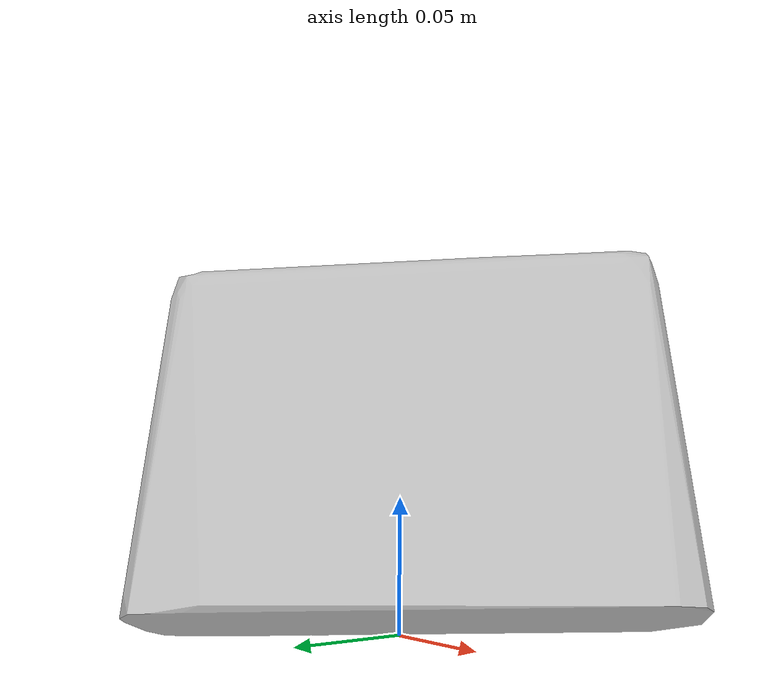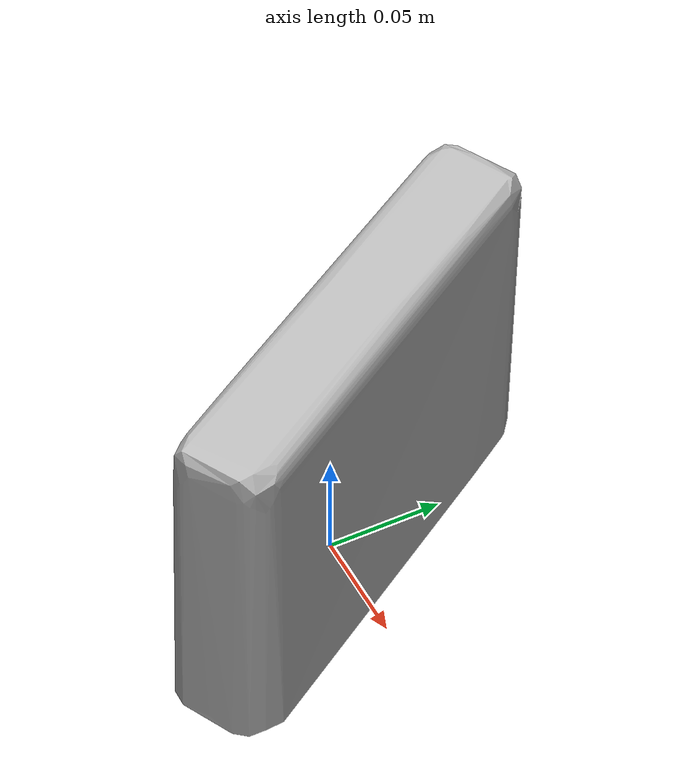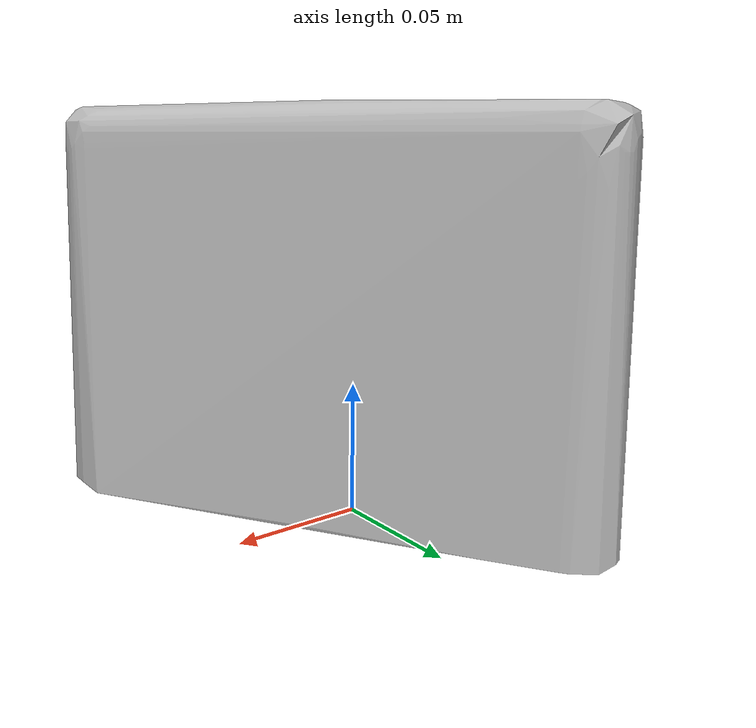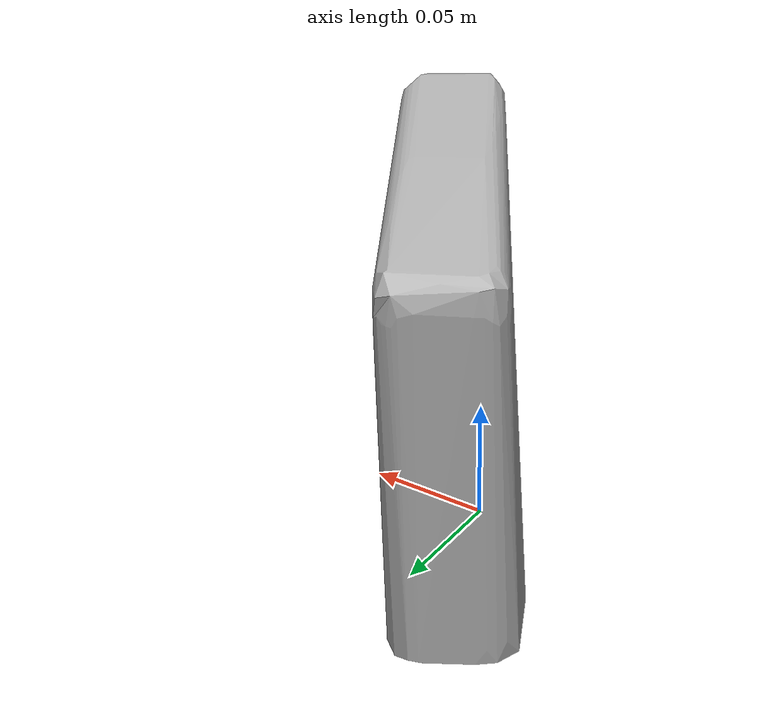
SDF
<?xml version='1.0'?>
<sdf version="1.4">
  <model name="eating_right_for_healthy_living_raspberry">
    <static>false</static>
    <link name="link">
      <inertial>
        <pose>0.011169665035991136 0.002716239341016906 0.07676595221138591 1.56359559501847 -0.02594059728827428 -2.583364667126295</pose>
        <mass>0.13668820052263037</mass>
        <inertia>
          <ixx>0.0006972077268920805</ixx>
          <ixy>-4.754121939419128e-21</ixy>
          <ixz>-1.3909231346189692e-19</ixz>
          <iyy>0.0004803288452206717</iyy>
          <iyz>8.779818538250115e-23</iyz>
          <izz>0.00026539439453928114</izz>
        </inertia>
      </inertial>
      <collision name="collision">
        <geometry>
          <mesh>
            <!-- Use a downsampled mesh for collisions -->
            <uri>model:///eating_right_for_healthy_living_raspberry/eating_right_for_healthy_living_raspberry_250_collision.obj</uri>
	        </mesh>
        </geometry>
        <surface>
      </surface>
      </collision>
      <visual name="visual">
        <geometry>
          <mesh>
            <uri>model:///eating_right_for_healthy_living_raspberry/optimized_tsdf_texture_mapped_mesh.obj</uri>
	        </mesh>
        </geometry>
        <material>
          <script>
            <uri>model:///eating_right_for_healthy_living_raspberry/eating_right_for_healthy_living_raspberry.material</uri>
            <name>eating_right_for_healthy_living_raspberry</name>
          </script>
        </material>
      </visual>
    </link>
  </model>
</sdf>
